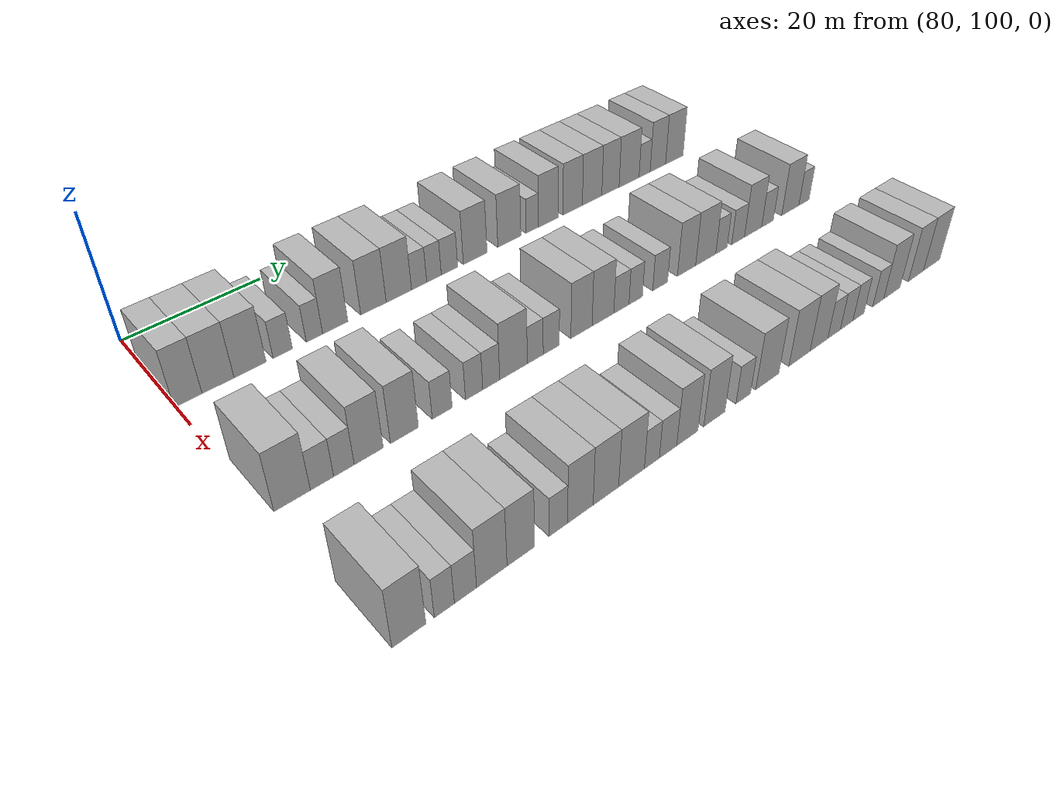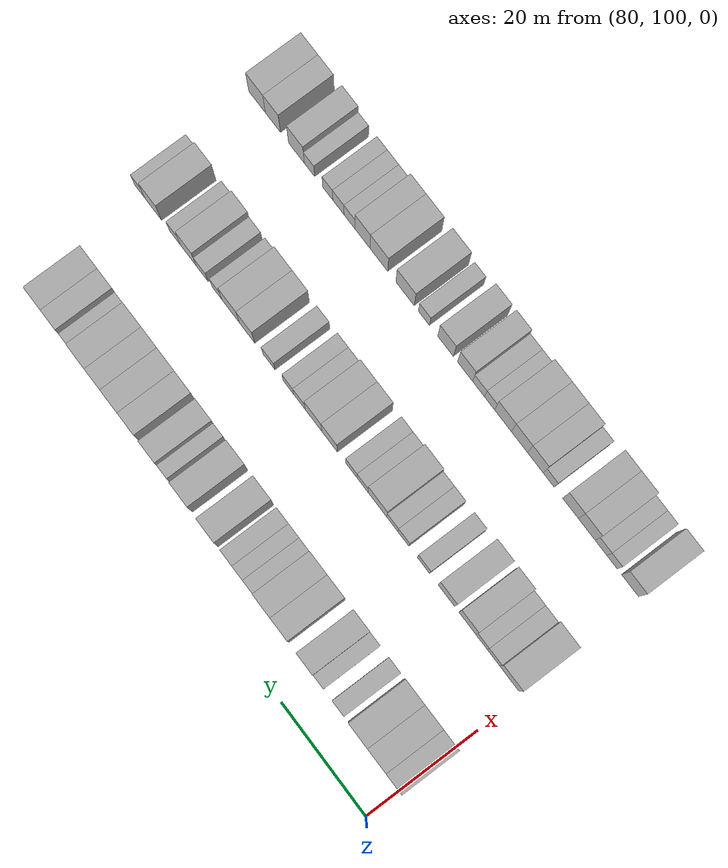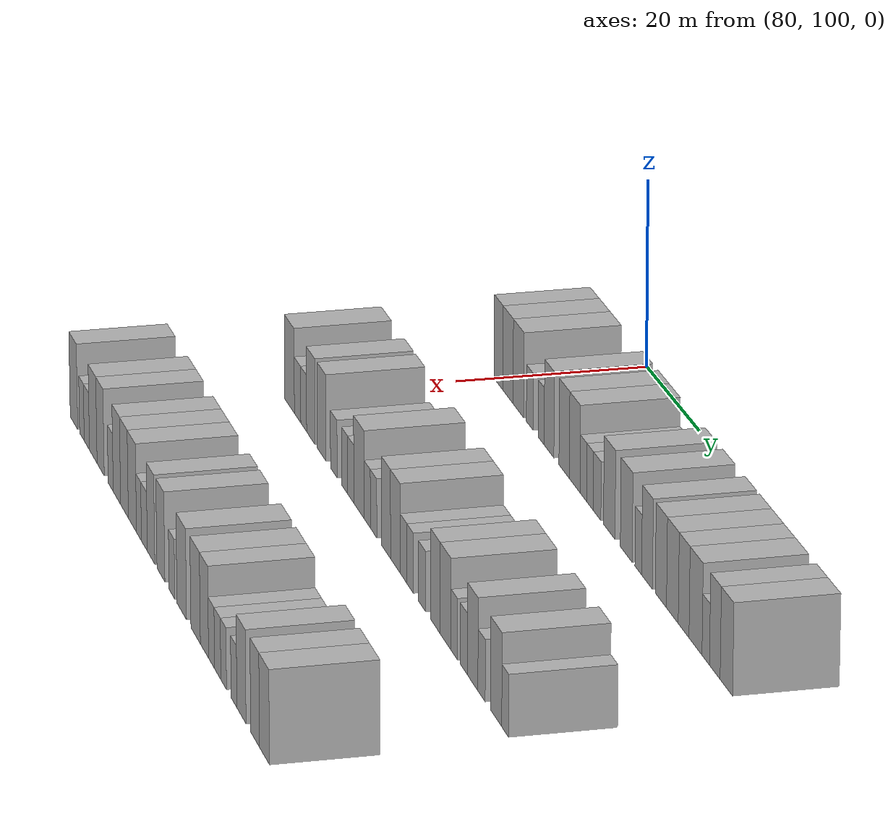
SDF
<sdf version="1.6">
 <world name="default">
  <model name="building_679">
   <static>1</static>
   <pose>91.0000 101.6212 0 0.000000 0.000000 0.000000</pose>
   <link name="link">
    <pose>0 0 4.50 0 0 0</pose>
    <collision name="collision"><geometry><box><size>10.0000 3.6153 9.0000</size></box></geometry></collision>
    <visual name="visual">
     <cast_shadows>0</cast_shadows>
     <geometry><box><size>10.0000 3.6153 9.0000</size></box></geometry>
     <material>
      <script>
       <uri>model://HANNAS_wall/materials/scripts</uri>
       <uri>model://HANNAS_wall/materials/textures</uri>
       <name>vrc/HANNAS_wall</name>
      </script>
     </material>
    </visual>
   </link>
  </model>
  <model name="building_680">
   <static>1</static>
   <pose>91.0000 105.5545 0 0.000000 0.000000 0.000000</pose>
   <link name="link">
    <pose>0 0 4.50 0 0 0</pose>
    <collision name="collision"><geometry><box><size>10.0000 4.2513 9.0000</size></box></geometry></collision>
    <visual name="visual">
     <cast_shadows>0</cast_shadows>
     <geometry><box><size>10.0000 4.2513 9.0000</size></box></geometry>
     <material>
      <script>
       <uri>model://HANNAS_wall/materials/scripts</uri>
       <uri>model://HANNAS_wall/materials/textures</uri>
       <name>vrc/HANNAS_wall</name>
      </script>
     </material>
    </visual>
   </link>
  </model>
  <model name="building_681">
   <static>1</static>
   <pose>91.0000 109.8918 0 0.000000 0.000000 0.000000</pose>
   <link name="link">
    <pose>0 0 4.50 0 0 0</pose>
    <collision name="collision"><geometry><box><size>10.0000 4.4233 9.0000</size></box></geometry></collision>
    <visual name="visual">
     <cast_shadows>0</cast_shadows>
     <geometry><box><size>10.0000 4.4233 9.0000</size></box></geometry>
     <material>
      <script>
       <uri>model://HANNAS_wall/materials/scripts</uri>
       <uri>model://HANNAS_wall/materials/textures</uri>
       <name>vrc/HANNAS_wall</name>
      </script>
     </material>
    </visual>
   </link>
  </model>
  <model name="building_682">
   <static>1</static>
   <pose>91.0000 114.4873 0 0.000000 0.000000 0.000000</pose>
   <link name="link">
    <pose>0 0 3.00 0 0 0</pose>
    <collision name="collision"><geometry><box><size>10.0000 2.7677 6.0000</size></box></geometry></collision>
    <visual name="visual">
     <cast_shadows>0</cast_shadows>
     <geometry><box><size>10.0000 2.7677 6.0000</size></box></geometry>
     <material>
      <script>
       <uri>model://HANNAS_wall/materials/scripts</uri>
       <uri>model://HANNAS_wall/materials/textures</uri>
       <name>vrc/HANNAS_wall</name>
      </script>
     </material>
    </visual>
   </link>
  </model>
  <model name="building_683">
   <static>1</static>
   <pose>91.0000 119.0884 0 0.000000 0.000000 0.000000</pose>
   <link name="link">
    <pose>0 0 3.00 0 0 0</pose>
    <collision name="collision"><geometry><box><size>10.0000 2.4344 6.0000</size></box></geometry></collision>
    <visual name="visual">
     <cast_shadows>0</cast_shadows>
     <geometry><box><size>10.0000 2.4344 6.0000</size></box></geometry>
     <material>
      <script>
       <uri>model://HANNAS_wall/materials/scripts</uri>
       <uri>model://HANNAS_wall/materials/textures</uri>
       <name>vrc/HANNAS_wall</name>
      </script>
     </material>
    </visual>
   </link>
  </model>
  <model name="building_684">
   <static>1</static>
   <pose>91.0000 122.2294 0 0.000000 0.000000 0.000000</pose>
   <link name="link">
    <pose>0 0 4.50 0 0 0</pose>
    <collision name="collision"><geometry><box><size>10.0000 3.8476 9.0000</size></box></geometry></collision>
    <visual name="visual">
     <cast_shadows>0</cast_shadows>
     <geometry><box><size>10.0000 3.8476 9.0000</size></box></geometry>
     <material>
      <script>
       <uri>model://HANNAS_wall/materials/scripts</uri>
       <uri>model://HANNAS_wall/materials/textures</uri>
       <name>vrc/HANNAS_wall</name>
      </script>
     </material>
    </visual>
   </link>
  </model>
  <model name="building_685">
   <static>1</static>
   <pose>91.0000 128.1828 0 0.000000 0.000000 0.000000</pose>
   <link name="link">
    <pose>0 0 4.50 0 0 0</pose>
    <collision name="collision"><geometry><box><size>10.0000 4.0592 9.0000</size></box></geometry></collision>
    <visual name="visual">
     <cast_shadows>0</cast_shadows>
     <geometry><box><size>10.0000 4.0592 9.0000</size></box></geometry>
     <material>
      <script>
       <uri>model://HANNAS_wall/materials/scripts</uri>
       <uri>model://HANNAS_wall/materials/textures</uri>
       <name>vrc/HANNAS_wall</name>
      </script>
     </material>
    </visual>
   </link>
  </model>
  <model name="building_686">
   <static>1</static>
   <pose>91.0000 132.2945 0 0.000000 0.000000 0.000000</pose>
   <link name="link">
    <pose>0 0 4.50 0 0 0</pose>
    <collision name="collision"><geometry><box><size>10.0000 4.1643 9.0000</size></box></geometry></collision>
    <visual name="visual">
     <cast_shadows>0</cast_shadows>
     <geometry><box><size>10.0000 4.1643 9.0000</size></box></geometry>
     <material>
      <script>
       <uri>model://HANNAS_wall/materials/scripts</uri>
       <uri>model://HANNAS_wall/materials/textures</uri>
       <name>vrc/HANNAS_wall</name>
      </script>
     </material>
    </visual>
   </link>
  </model>
  <model name="building_687">
   <static>1</static>
   <pose>91.0000 135.6548 0 0.000000 0.000000 0.000000</pose>
   <link name="link">
    <pose>0 0 3.00 0 0 0</pose>
    <collision name="collision"><geometry><box><size>10.0000 2.5563 6.0000</size></box></geometry></collision>
    <visual name="visual">
     <cast_shadows>0</cast_shadows>
     <geometry><box><size>10.0000 2.5563 6.0000</size></box></geometry>
     <material>
      <script>
       <uri>model://HANNAS_wall/materials/scripts</uri>
       <uri>model://HANNAS_wall/materials/textures</uri>
       <name>vrc/HANNAS_wall</name>
      </script>
     </material>
    </visual>
   </link>
  </model>
  <model name="building_688">
   <static>1</static>
   <pose>91.0000 138.1840 0 0.000000 0.000000 0.000000</pose>
   <link name="link">
    <pose>0 0 3.00 0 0 0</pose>
    <collision name="collision"><geometry><box><size>10.0000 2.5020 6.0000</size></box></geometry></collision>
    <visual name="visual">
     <cast_shadows>0</cast_shadows>
     <geometry><box><size>10.0000 2.5020 6.0000</size></box></geometry>
     <material>
      <script>
       <uri>model://HANNAS_wall/materials/scripts</uri>
       <uri>model://HANNAS_wall/materials/textures</uri>
       <name>vrc/HANNAS_wall</name>
      </script>
     </material>
    </visual>
   </link>
  </model>
  <model name="building_689">
   <static>1</static>
   <pose>91.0000 140.8739 0 0.000000 0.000000 0.000000</pose>
   <link name="link">
    <pose>0 0 3.00 0 0 0</pose>
    <collision name="collision"><geometry><box><size>10.0000 2.8779 6.0000</size></box></geometry></collision>
    <visual name="visual">
     <cast_shadows>0</cast_shadows>
     <geometry><box><size>10.0000 2.8779 6.0000</size></box></geometry>
     <material>
      <script>
       <uri>model://HANNAS_wall/materials/scripts</uri>
       <uri>model://HANNAS_wall/materials/textures</uri>
       <name>vrc/HANNAS_wall</name>
      </script>
     </material>
    </visual>
   </link>
  </model>
  <model name="building_690">
   <static>1</static>
   <pose>91.0000 145.4572 0 0.000000 0.000000 0.000000</pose>
   <link name="link">
    <pose>0 0 4.50 0 0 0</pose>
    <collision name="collision"><geometry><box><size>10.0000 4.2887 9.0000</size></box></geometry></collision>
    <visual name="visual">
     <cast_shadows>0</cast_shadows>
     <geometry><box><size>10.0000 4.2887 9.0000</size></box></geometry>
     <material>
      <script>
       <uri>model://HANNAS_wall/materials/scripts</uri>
       <uri>model://HANNAS_wall/materials/textures</uri>
       <name>vrc/HANNAS_wall</name>
      </script>
     </material>
    </visual>
   </link>
  </model>
  <model name="building_691">
   <static>1</static>
   <pose>91.0000 151.7797 0 0.000000 0.000000 0.000000</pose>
   <link name="link">
    <pose>0 0 4.50 0 0 0</pose>
    <collision name="collision"><geometry><box><size>10.0000 4.3563 9.0000</size></box></geometry></collision>
    <visual name="visual">
     <cast_shadows>0</cast_shadows>
     <geometry><box><size>10.0000 4.3563 9.0000</size></box></geometry>
     <material>
      <script>
       <uri>model://HANNAS_wall/materials/scripts</uri>
       <uri>model://HANNAS_wall/materials/textures</uri>
       <name>vrc/HANNAS_wall</name>
      </script>
     </material>
    </visual>
   </link>
  </model>
  <model name="building_692">
   <static>1</static>
   <pose>91.0000 156.1685 0 0.000000 0.000000 0.000000</pose>
   <link name="link">
    <pose>0 0 3.00 0 0 0</pose>
    <collision name="collision"><geometry><box><size>10.0000 2.4213 6.0000</size></box></geometry></collision>
    <visual name="visual">
     <cast_shadows>0</cast_shadows>
     <geometry><box><size>10.0000 2.4213 6.0000</size></box></geometry>
     <material>
      <script>
       <uri>model://HANNAS_wall/materials/scripts</uri>
       <uri>model://HANNAS_wall/materials/textures</uri>
       <name>vrc/HANNAS_wall</name>
      </script>
     </material>
    </visual>
   </link>
  </model>
  <model name="building_693">
   <static>1</static>
   <pose>91.0000 159.3362 0 0.000000 0.000000 0.000000</pose>
   <link name="link">
    <pose>0 0 4.50 0 0 0</pose>
    <collision name="collision"><geometry><box><size>10.0000 3.9141 9.0000</size></box></geometry></collision>
    <visual name="visual">
     <cast_shadows>0</cast_shadows>
     <geometry><box><size>10.0000 3.9141 9.0000</size></box></geometry>
     <material>
      <script>
       <uri>model://HANNAS_wall/materials/scripts</uri>
       <uri>model://HANNAS_wall/materials/textures</uri>
       <name>vrc/HANNAS_wall</name>
      </script>
     </material>
    </visual>
   </link>
  </model>
  <model name="building_694">
   <static>1</static>
   <pose>91.0000 164.2938 0 0.000000 0.000000 0.000000</pose>
   <link name="link">
    <pose>0 0 4.50 0 0 0</pose>
    <collision name="collision"><geometry><box><size>10.0000 4.0011 9.0000</size></box></geometry></collision>
    <visual name="visual">
     <cast_shadows>0</cast_shadows>
     <geometry><box><size>10.0000 4.0011 9.0000</size></box></geometry>
     <material>
      <script>
       <uri>model://HANNAS_wall/materials/scripts</uri>
       <uri>model://HANNAS_wall/materials/textures</uri>
       <name>vrc/HANNAS_wall</name>
      </script>
     </material>
    </visual>
   </link>
  </model>
  <model name="building_695">
   <static>1</static>
   <pose>91.0000 168.3544 0 0.000000 0.000000 0.000000</pose>
   <link name="link">
    <pose>0 0 4.50 0 0 0</pose>
    <collision name="collision"><geometry><box><size>10.0000 4.1201 9.0000</size></box></geometry></collision>
    <visual name="visual">
     <cast_shadows>0</cast_shadows>
     <geometry><box><size>10.0000 4.1201 9.0000</size></box></geometry>
     <material>
      <script>
       <uri>model://HANNAS_wall/materials/scripts</uri>
       <uri>model://HANNAS_wall/materials/textures</uri>
       <name>vrc/HANNAS_wall</name>
      </script>
     </material>
    </visual>
   </link>
  </model>
  <model name="building_696">
   <static>1</static>
   <pose>91.0000 172.2932 0 0.000000 0.000000 0.000000</pose>
   <link name="link">
    <pose>0 0 4.50 0 0 0</pose>
    <collision name="collision"><geometry><box><size>10.0000 3.7576 9.0000</size></box></geometry></collision>
    <visual name="visual">
     <cast_shadows>0</cast_shadows>
     <geometry><box><size>10.0000 3.7576 9.0000</size></box></geometry>
     <material>
      <script>
       <uri>model://HANNAS_wall/materials/scripts</uri>
       <uri>model://HANNAS_wall/materials/textures</uri>
       <name>vrc/HANNAS_wall</name>
      </script>
     </material>
    </visual>
   </link>
  </model>
  <model name="building_697">
   <static>1</static>
   <pose>91.0000 176.4054 0 0.000000 0.000000 0.000000</pose>
   <link name="link">
    <pose>0 0 4.50 0 0 0</pose>
    <collision name="collision"><geometry><box><size>10.0000 4.4668 9.0000</size></box></geometry></collision>
    <visual name="visual">
     <cast_shadows>0</cast_shadows>
     <geometry><box><size>10.0000 4.4668 9.0000</size></box></geometry>
     <material>
      <script>
       <uri>model://HANNAS_wall/materials/scripts</uri>
       <uri>model://HANNAS_wall/materials/textures</uri>
       <name>vrc/HANNAS_wall</name>
      </script>
     </material>
    </visual>
   </link>
  </model>
  <model name="building_698">
   <static>1</static>
   <pose>91.0000 179.9045 0 0.000000 0.000000 0.000000</pose>
   <link name="link">
    <pose>0 0 3.00 0 0 0</pose>
    <collision name="collision"><geometry><box><size>10.0000 2.5314 6.0000</size></box></geometry></collision>
    <visual name="visual">
     <cast_shadows>0</cast_shadows>
     <geometry><box><size>10.0000 2.5314 6.0000</size></box></geometry>
     <material>
      <script>
       <uri>model://HANNAS_wall/materials/scripts</uri>
       <uri>model://HANNAS_wall/materials/textures</uri>
       <name>vrc/HANNAS_wall</name>
      </script>
     </material>
    </visual>
   </link>
  </model>
  <model name="building_699">
   <static>1</static>
   <pose>91.0000 182.9709 0 0.000000 0.000000 0.000000</pose>
   <link name="link">
    <pose>0 0 4.50 0 0 0</pose>
    <collision name="collision"><geometry><box><size>10.0000 3.6015 9.0000</size></box></geometry></collision>
    <visual name="visual">
     <cast_shadows>0</cast_shadows>
     <geometry><box><size>10.0000 3.6015 9.0000</size></box></geometry>
     <material>
      <script>
       <uri>model://HANNAS_wall/materials/scripts</uri>
       <uri>model://HANNAS_wall/materials/textures</uri>
       <name>vrc/HANNAS_wall</name>
      </script>
     </material>
    </visual>
   </link>
  </model>
  <model name="building_700">
   <static>1</static>
   <pose>91.0000 186.8522 0 0.000000 0.000000 0.000000</pose>
   <link name="link">
    <pose>0 0 4.50 0 0 0</pose>
    <collision name="collision"><geometry><box><size>10.0000 4.1610 9.0000</size></box></geometry></collision>
    <visual name="visual">
     <cast_shadows>0</cast_shadows>
     <geometry><box><size>10.0000 4.1610 9.0000</size></box></geometry>
     <material>
      <script>
       <uri>model://HANNAS_wall/materials/scripts</uri>
       <uri>model://HANNAS_wall/materials/textures</uri>
       <name>vrc/HANNAS_wall</name>
      </script>
     </material>
    </visual>
   </link>
  </model>
  <model name="building_860">
   <static>1</static>
   <pose>113.0000 103.1482 0 0.000000 0.000000 0.000000</pose>
   <link name="link">
    <pose>0 0 4.50 0 0 0</pose>
    <collision name="collision"><geometry><box><size>10.0000 4.4963 9.0000</size></box></geometry></collision>
    <visual name="visual">
     <cast_shadows>0</cast_shadows>
     <geometry><box><size>10.0000 4.4963 9.0000</size></box></geometry>
     <material>
      <script>
       <uri>model://HANNAS_wall/materials/scripts</uri>
       <uri>model://HANNAS_wall/materials/textures</uri>
       <name>vrc/HANNAS_wall</name>
      </script>
     </material>
    </visual>
   </link>
  </model>
  <model name="building_861">
   <static>1</static>
   <pose>113.0000 106.8782 0 0.000000 0.000000 0.000000</pose>
   <link name="link">
    <pose>0 0 3.00 0 0 0</pose>
    <collision name="collision"><geometry><box><size>10.0000 2.9636 6.0000</size></box></geometry></collision>
    <visual name="visual">
     <cast_shadows>0</cast_shadows>
     <geometry><box><size>10.0000 2.9636 6.0000</size></box></geometry>
     <material>
      <script>
       <uri>model://HANNAS_wall/materials/scripts</uri>
       <uri>model://HANNAS_wall/materials/textures</uri>
       <name>vrc/HANNAS_wall</name>
      </script>
     </material>
    </visual>
   </link>
  </model>
  <model name="building_862">
   <static>1</static>
   <pose>113.0000 109.6993 0 0.000000 0.000000 0.000000</pose>
   <link name="link">
    <pose>0 0 3.00 0 0 0</pose>
    <collision name="collision"><geometry><box><size>10.0000 2.6786 6.0000</size></box></geometry></collision>
    <visual name="visual">
     <cast_shadows>0</cast_shadows>
     <geometry><box><size>10.0000 2.6786 6.0000</size></box></geometry>
     <material>
      <script>
       <uri>model://HANNAS_wall/materials/scripts</uri>
       <uri>model://HANNAS_wall/materials/textures</uri>
       <name>vrc/HANNAS_wall</name>
      </script>
     </material>
    </visual>
   </link>
  </model>
  <model name="building_863">
   <static>1</static>
   <pose>113.0000 112.9883 0 0.000000 0.000000 0.000000</pose>
   <link name="link">
    <pose>0 0 4.50 0 0 0</pose>
    <collision name="collision"><geometry><box><size>10.0000 3.8994 9.0000</size></box></geometry></collision>
    <visual name="visual">
     <cast_shadows>0</cast_shadows>
     <geometry><box><size>10.0000 3.8994 9.0000</size></box></geometry>
     <material>
      <script>
       <uri>model://HANNAS_wall/materials/scripts</uri>
       <uri>model://HANNAS_wall/materials/textures</uri>
       <name>vrc/HANNAS_wall</name>
      </script>
     </material>
    </visual>
   </link>
  </model>
  <model name="building_864">
   <static>1</static>
   <pose>113.0000 117.8979 0 0.000000 0.000000 0.000000</pose>
   <link name="link">
    <pose>0 0 4.50 0 0 0</pose>
    <collision name="collision"><geometry><box><size>10.0000 3.9199 9.0000</size></box></geometry></collision>
    <visual name="visual">
     <cast_shadows>0</cast_shadows>
     <geometry><box><size>10.0000 3.9199 9.0000</size></box></geometry>
     <material>
      <script>
       <uri>model://HANNAS_wall/materials/scripts</uri>
       <uri>model://HANNAS_wall/materials/textures</uri>
       <name>vrc/HANNAS_wall</name>
      </script>
     </material>
    </visual>
   </link>
  </model>
  <model name="building_865">
   <static>1</static>
   <pose>113.0000 123.3279 0 0.000000 0.000000 0.000000</pose>
   <link name="link">
    <pose>0 0 3.00 0 0 0</pose>
    <collision name="collision"><geometry><box><size>10.0000 2.9401 6.0000</size></box></geometry></collision>
    <visual name="visual">
     <cast_shadows>0</cast_shadows>
     <geometry><box><size>10.0000 2.9401 6.0000</size></box></geometry>
     <material>
      <script>
       <uri>model://HANNAS_wall/materials/scripts</uri>
       <uri>model://HANNAS_wall/materials/textures</uri>
       <name>vrc/HANNAS_wall</name>
      </script>
     </material>
    </visual>
   </link>
  </model>
  <model name="building_866">
   <static>1</static>
   <pose>113.0000 128.1260 0 0.000000 0.000000 0.000000</pose>
   <link name="link">
    <pose>0 0 3.00 0 0 0</pose>
    <collision name="collision"><geometry><box><size>10.0000 2.6561 6.0000</size></box></geometry></collision>
    <visual name="visual">
     <cast_shadows>0</cast_shadows>
     <geometry><box><size>10.0000 2.6561 6.0000</size></box></geometry>
     <material>
      <script>
       <uri>model://HANNAS_wall/materials/scripts</uri>
       <uri>model://HANNAS_wall/materials/textures</uri>
       <name>vrc/HANNAS_wall</name>
      </script>
     </material>
    </visual>
   </link>
  </model>
  <model name="building_867">
   <static>1</static>
   <pose>113.0000 130.7864 0 0.000000 0.000000 0.000000</pose>
   <link name="link">
    <pose>0 0 3.00 0 0 0</pose>
    <collision name="collision"><geometry><box><size>10.0000 2.6648 6.0000</size></box></geometry></collision>
    <visual name="visual">
     <cast_shadows>0</cast_shadows>
     <geometry><box><size>10.0000 2.6648 6.0000</size></box></geometry>
     <material>
      <script>
       <uri>model://HANNAS_wall/materials/scripts</uri>
       <uri>model://HANNAS_wall/materials/textures</uri>
       <name>vrc/HANNAS_wall</name>
      </script>
     </material>
    </visual>
   </link>
  </model>
  <model name="building_868">
   <static>1</static>
   <pose>113.0000 134.3529 0 0.000000 0.000000 0.000000</pose>
   <link name="link">
    <pose>0 0 4.50 0 0 0</pose>
    <collision name="collision"><geometry><box><size>10.0000 4.4680 9.0000</size></box></geometry></collision>
    <visual name="visual">
     <cast_shadows>0</cast_shadows>
     <geometry><box><size>10.0000 4.4680 9.0000</size></box></geometry>
     <material>
      <script>
       <uri>model://HANNAS_wall/materials/scripts</uri>
       <uri>model://HANNAS_wall/materials/textures</uri>
       <name>vrc/HANNAS_wall</name>
      </script>
     </material>
    </visual>
   </link>
  </model>
  <model name="building_869">
   <static>1</static>
   <pose>113.0000 137.9036 0 0.000000 0.000000 0.000000</pose>
   <link name="link">
    <pose>0 0 3.00 0 0 0</pose>
    <collision name="collision"><geometry><box><size>10.0000 2.6336 6.0000</size></box></geometry></collision>
    <visual name="visual">
     <cast_shadows>0</cast_shadows>
     <geometry><box><size>10.0000 2.6336 6.0000</size></box></geometry>
     <material>
      <script>
       <uri>model://HANNAS_wall/materials/scripts</uri>
       <uri>model://HANNAS_wall/materials/textures</uri>
       <name>vrc/HANNAS_wall</name>
      </script>
     </material>
    </visual>
   </link>
  </model>
  <model name="building_870">
   <static>1</static>
   <pose>113.0000 140.5861 0 0.000000 0.000000 0.000000</pose>
   <link name="link">
    <pose>0 0 3.00 0 0 0</pose>
    <collision name="collision"><geometry><box><size>10.0000 2.7313 6.0000</size></box></geometry></collision>
    <visual name="visual">
     <cast_shadows>0</cast_shadows>
     <geometry><box><size>10.0000 2.7313 6.0000</size></box></geometry>
     <material>
      <script>
       <uri>model://HANNAS_wall/materials/scripts</uri>
       <uri>model://HANNAS_wall/materials/textures</uri>
       <name>vrc/HANNAS_wall</name>
      </script>
     </material>
    </visual>
   </link>
  </model>
  <model name="building_871">
   <static>1</static>
   <pose>113.0000 145.8347 0 0.000000 0.000000 0.000000</pose>
   <link name="link">
    <pose>0 0 4.50 0 0 0</pose>
    <collision name="collision"><geometry><box><size>10.0000 3.7659 9.0000</size></box></geometry></collision>
    <visual name="visual">
     <cast_shadows>0</cast_shadows>
     <geometry><box><size>10.0000 3.7659 9.0000</size></box></geometry>
     <material>
      <script>
       <uri>model://HANNAS_wall/materials/scripts</uri>
       <uri>model://HANNAS_wall/materials/textures</uri>
       <name>vrc/HANNAS_wall</name>
      </script>
     </material>
    </visual>
   </link>
  </model>
  <model name="building_872">
   <static>1</static>
   <pose>113.0000 149.7033 0 0.000000 0.000000 0.000000</pose>
   <link name="link">
    <pose>0 0 4.50 0 0 0</pose>
    <collision name="collision"><geometry><box><size>10.0000 3.9713 9.0000</size></box></geometry></collision>
    <visual name="visual">
     <cast_shadows>0</cast_shadows>
     <geometry><box><size>10.0000 3.9713 9.0000</size></box></geometry>
     <material>
      <script>
       <uri>model://HANNAS_wall/materials/scripts</uri>
       <uri>model://HANNAS_wall/materials/textures</uri>
       <name>vrc/HANNAS_wall</name>
      </script>
     </material>
    </visual>
   </link>
  </model>
  <model name="building_873">
   <static>1</static>
   <pose>113.0000 153.1088 0 0.000000 0.000000 0.000000</pose>
   <link name="link">
    <pose>0 0 3.00 0 0 0</pose>
    <collision name="collision"><geometry><box><size>10.0000 2.8398 6.0000</size></box></geometry></collision>
    <visual name="visual">
     <cast_shadows>0</cast_shadows>
     <geometry><box><size>10.0000 2.8398 6.0000</size></box></geometry>
     <material>
      <script>
       <uri>model://HANNAS_wall/materials/scripts</uri>
       <uri>model://HANNAS_wall/materials/textures</uri>
       <name>vrc/HANNAS_wall</name>
      </script>
     </material>
    </visual>
   </link>
  </model>
  <model name="building_874">
   <static>1</static>
   <pose>113.0000 155.8177 0 0.000000 0.000000 0.000000</pose>
   <link name="link">
    <pose>0 0 3.00 0 0 0</pose>
    <collision name="collision"><geometry><box><size>10.0000 2.5779 6.0000</size></box></geometry></collision>
    <visual name="visual">
     <cast_shadows>0</cast_shadows>
     <geometry><box><size>10.0000 2.5779 6.0000</size></box></geometry>
     <material>
      <script>
       <uri>model://HANNAS_wall/materials/scripts</uri>
       <uri>model://HANNAS_wall/materials/textures</uri>
       <name>vrc/HANNAS_wall</name>
      </script>
     </material>
    </visual>
   </link>
  </model>
  <model name="building_875">
   <static>1</static>
   <pose>113.0000 160.5826 0 0.000000 0.000000 0.000000</pose>
   <link name="link">
    <pose>0 0 3.00 0 0 0</pose>
    <collision name="collision"><geometry><box><size>10.0000 2.9520 6.0000</size></box></geometry></collision>
    <visual name="visual">
     <cast_shadows>0</cast_shadows>
     <geometry><box><size>10.0000 2.9520 6.0000</size></box></geometry>
     <material>
      <script>
       <uri>model://HANNAS_wall/materials/scripts</uri>
       <uri>model://HANNAS_wall/materials/textures</uri>
       <name>vrc/HANNAS_wall</name>
      </script>
     </material>
    </visual>
   </link>
  </model>
  <model name="building_876">
   <static>1</static>
   <pose>113.0000 165.9378 0 0.000000 0.000000 0.000000</pose>
   <link name="link">
    <pose>0 0 4.50 0 0 0</pose>
    <collision name="collision"><geometry><box><size>10.0000 3.7582 9.0000</size></box></geometry></collision>
    <visual name="visual">
     <cast_shadows>0</cast_shadows>
     <geometry><box><size>10.0000 3.7582 9.0000</size></box></geometry>
     <material>
      <script>
       <uri>model://HANNAS_wall/materials/scripts</uri>
       <uri>model://HANNAS_wall/materials/textures</uri>
       <name>vrc/HANNAS_wall</name>
      </script>
     </material>
    </visual>
   </link>
  </model>
  <model name="building_877">
   <static>1</static>
   <pose>113.0000 169.9534 0 0.000000 0.000000 0.000000</pose>
   <link name="link">
    <pose>0 0 4.50 0 0 0</pose>
    <collision name="collision"><geometry><box><size>10.0000 4.2731 9.0000</size></box></geometry></collision>
    <visual name="visual">
     <cast_shadows>0</cast_shadows>
     <geometry><box><size>10.0000 4.2731 9.0000</size></box></geometry>
     <material>
      <script>
       <uri>model://HANNAS_wall/materials/scripts</uri>
       <uri>model://HANNAS_wall/materials/textures</uri>
       <name>vrc/HANNAS_wall</name>
      </script>
     </material>
    </visual>
   </link>
  </model>
  <model name="building_878">
   <static>1</static>
   <pose>113.0000 173.3250 0 0.000000 0.000000 0.000000</pose>
   <link name="link">
    <pose>0 0 3.00 0 0 0</pose>
    <collision name="collision"><geometry><box><size>10.0000 2.4700 6.0000</size></box></geometry></collision>
    <visual name="visual">
     <cast_shadows>0</cast_shadows>
     <geometry><box><size>10.0000 2.4700 6.0000</size></box></geometry>
     <material>
      <script>
       <uri>model://HANNAS_wall/materials/scripts</uri>
       <uri>model://HANNAS_wall/materials/textures</uri>
       <name>vrc/HANNAS_wall</name>
      </script>
     </material>
    </visual>
   </link>
  </model>
  <model name="building_879">
   <static>1</static>
   <pose>113.0000 176.9972 0 0.000000 0.000000 0.000000</pose>
   <link name="link">
    <pose>0 0 3.00 0 0 0</pose>
    <collision name="collision"><geometry><box><size>10.0000 2.8744 6.0000</size></box></geometry></collision>
    <visual name="visual">
     <cast_shadows>0</cast_shadows>
     <geometry><box><size>10.0000 2.8744 6.0000</size></box></geometry>
     <material>
      <script>
       <uri>model://HANNAS_wall/materials/scripts</uri>
       <uri>model://HANNAS_wall/materials/textures</uri>
       <name>vrc/HANNAS_wall</name>
      </script>
     </material>
    </visual>
   </link>
  </model>
  <model name="building_880">
   <static>1</static>
   <pose>113.0000 180.3975 0 0.000000 0.000000 0.000000</pose>
   <link name="link">
    <pose>0 0 4.50 0 0 0</pose>
    <collision name="collision"><geometry><box><size>10.0000 3.9262 9.0000</size></box></geometry></collision>
    <visual name="visual">
     <cast_shadows>0</cast_shadows>
     <geometry><box><size>10.0000 3.9262 9.0000</size></box></geometry>
     <material>
      <script>
       <uri>model://HANNAS_wall/materials/scripts</uri>
       <uri>model://HANNAS_wall/materials/textures</uri>
       <name>vrc/HANNAS_wall</name>
      </script>
     </material>
    </visual>
   </link>
  </model>
  <model name="building_881">
   <static>1</static>
   <pose>113.0000 183.7298 0 0.000000 0.000000 0.000000</pose>
   <link name="link">
    <pose>0 0 3.00 0 0 0</pose>
    <collision name="collision"><geometry><box><size>10.0000 2.7385 6.0000</size></box></geometry></collision>
    <visual name="visual">
     <cast_shadows>0</cast_shadows>
     <geometry><box><size>10.0000 2.7385 6.0000</size></box></geometry>
     <material>
      <script>
       <uri>model://HANNAS_wall/materials/scripts</uri>
       <uri>model://HANNAS_wall/materials/textures</uri>
       <name>vrc/HANNAS_wall</name>
      </script>
     </material>
    </visual>
   </link>
  </model>
  <model name="building_882">
   <static>1</static>
   <pose>113.0000 189.1784 0 0.000000 0.000000 0.000000</pose>
   <link name="link">
    <pose>0 0 4.50 0 0 0</pose>
    <collision name="collision"><geometry><box><size>10.0000 4.1587 9.0000</size></box></geometry></collision>
    <visual name="visual">
     <cast_shadows>0</cast_shadows>
     <geometry><box><size>10.0000 4.1587 9.0000</size></box></geometry>
     <material>
      <script>
       <uri>model://HANNAS_wall/materials/scripts</uri>
       <uri>model://HANNAS_wall/materials/textures</uri>
       <name>vrc/HANNAS_wall</name>
      </script>
     </material>
    </visual>
   </link>
  </model>
  <model name="building_883">
   <static>1</static>
   <pose>113.0000 192.5185 0 0.000000 0.000000 0.000000</pose>
   <link name="link">
    <pose>0 0 3.00 0 0 0</pose>
    <collision name="collision"><geometry><box><size>10.0000 2.5215 6.0000</size></box></geometry></collision>
    <visual name="visual">
     <cast_shadows>0</cast_shadows>
     <geometry><box><size>10.0000 2.5215 6.0000</size></box></geometry>
     <material>
      <script>
       <uri>model://HANNAS_wall/materials/scripts</uri>
       <uri>model://HANNAS_wall/materials/textures</uri>
       <name>vrc/HANNAS_wall</name>
      </script>
     </material>
    </visual>
   </link>
  </model>
  <model name="building_1061">
   <static>1</static>
   <pose>135.0000 103.1004 0 0.000000 0.000000 0.000000</pose>
   <link name="link">
    <pose>0 0 4.50 0 0 0</pose>
    <collision name="collision"><geometry><box><size>10.0000 3.9620 9.0000</size></box></geometry></collision>
    <visual name="visual">
     <cast_shadows>0</cast_shadows>
     <geometry><box><size>10.0000 3.9620 9.0000</size></box></geometry>
     <material>
      <script>
       <uri>model://HANNAS_wall/materials/scripts</uri>
       <uri>model://HANNAS_wall/materials/textures</uri>
       <name>vrc/HANNAS_wall</name>
      </script>
     </material>
    </visual>
   </link>
  </model>
  <model name="building_1062">
   <static>1</static>
   <pose>135.0000 107.3037 0 0.000000 0.000000 0.000000</pose>
   <link name="link">
    <pose>0 0 3.00 0 0 0</pose>
    <collision name="collision"><geometry><box><size>10.0000 2.4447 6.0000</size></box></geometry></collision>
    <visual name="visual">
     <cast_shadows>0</cast_shadows>
     <geometry><box><size>10.0000 2.4447 6.0000</size></box></geometry>
     <material>
      <script>
       <uri>model://HANNAS_wall/materials/scripts</uri>
       <uri>model://HANNAS_wall/materials/textures</uri>
       <name>vrc/HANNAS_wall</name>
      </script>
     </material>
    </visual>
   </link>
  </model>
  <model name="building_1063">
   <static>1</static>
   <pose>135.0000 109.9059 0 0.000000 0.000000 0.000000</pose>
   <link name="link">
    <pose>0 0 3.00 0 0 0</pose>
    <collision name="collision"><geometry><box><size>10.0000 2.7597 6.0000</size></box></geometry></collision>
    <visual name="visual">
     <cast_shadows>0</cast_shadows>
     <geometry><box><size>10.0000 2.7597 6.0000</size></box></geometry>
     <material>
      <script>
       <uri>model://HANNAS_wall/materials/scripts</uri>
       <uri>model://HANNAS_wall/materials/textures</uri>
       <name>vrc/HANNAS_wall</name>
      </script>
     </material>
    </visual>
   </link>
  </model>
  <model name="building_1064">
   <static>1</static>
   <pose>135.0000 113.2553 0 0.000000 0.000000 0.000000</pose>
   <link name="link">
    <pose>0 0 4.50 0 0 0</pose>
    <collision name="collision"><geometry><box><size>10.0000 3.9391 9.0000</size></box></geometry></collision>
    <visual name="visual">
     <cast_shadows>0</cast_shadows>
     <geometry><box><size>10.0000 3.9391 9.0000</size></box></geometry>
     <material>
      <script>
       <uri>model://HANNAS_wall/materials/scripts</uri>
       <uri>model://HANNAS_wall/materials/textures</uri>
       <name>vrc/HANNAS_wall</name>
      </script>
     </material>
    </visual>
   </link>
  </model>
  <model name="building_1065">
   <static>1</static>
   <pose>135.0000 117.0712 0 0.000000 0.000000 0.000000</pose>
   <link name="link">
    <pose>0 0 4.50 0 0 0</pose>
    <collision name="collision"><geometry><box><size>10.0000 3.6927 9.0000</size></box></geometry></collision>
    <visual name="visual">
     <cast_shadows>0</cast_shadows>
     <geometry><box><size>10.0000 3.6927 9.0000</size></box></geometry>
     <material>
      <script>
       <uri>model://HANNAS_wall/materials/scripts</uri>
       <uri>model://HANNAS_wall/materials/textures</uri>
       <name>vrc/HANNAS_wall</name>
      </script>
     </material>
    </visual>
   </link>
  </model>
  <model name="building_1066">
   <static>1</static>
   <pose>135.0000 122.2132 0 0.000000 0.000000 0.000000</pose>
   <link name="link">
    <pose>0 0 3.00 0 0 0</pose>
    <collision name="collision"><geometry><box><size>10.0000 2.5913 6.0000</size></box></geometry></collision>
    <visual name="visual">
     <cast_shadows>0</cast_shadows>
     <geometry><box><size>10.0000 2.5913 6.0000</size></box></geometry>
     <material>
      <script>
       <uri>model://HANNAS_wall/materials/scripts</uri>
       <uri>model://HANNAS_wall/materials/textures</uri>
       <name>vrc/HANNAS_wall</name>
      </script>
     </material>
    </visual>
   </link>
  </model>
  <model name="building_1067">
   <static>1</static>
   <pose>135.0000 125.3776 0 0.000000 0.000000 0.000000</pose>
   <link name="link">
    <pose>0 0 4.50 0 0 0</pose>
    <collision name="collision"><geometry><box><size>10.0000 3.7375 9.0000</size></box></geometry></collision>
    <visual name="visual">
     <cast_shadows>0</cast_shadows>
     <geometry><box><size>10.0000 3.7375 9.0000</size></box></geometry>
     <material>
      <script>
       <uri>model://HANNAS_wall/materials/scripts</uri>
       <uri>model://HANNAS_wall/materials/textures</uri>
       <name>vrc/HANNAS_wall</name>
      </script>
     </material>
    </visual>
   </link>
  </model>
  <model name="building_1068">
   <static>1</static>
   <pose>135.0000 129.1662 0 0.000000 0.000000 0.000000</pose>
   <link name="link">
    <pose>0 0 4.50 0 0 0</pose>
    <collision name="collision"><geometry><box><size>10.0000 3.8397 9.0000</size></box></geometry></collision>
    <visual name="visual">
     <cast_shadows>0</cast_shadows>
     <geometry><box><size>10.0000 3.8397 9.0000</size></box></geometry>
     <material>
      <script>
       <uri>model://HANNAS_wall/materials/scripts</uri>
       <uri>model://HANNAS_wall/materials/textures</uri>
       <name>vrc/HANNAS_wall</name>
      </script>
     </material>
    </visual>
   </link>
  </model>
  <model name="building_1069">
   <static>1</static>
   <pose>135.0000 133.0958 0 0.000000 0.000000 0.000000</pose>
   <link name="link">
    <pose>0 0 4.50 0 0 0</pose>
    <collision name="collision"><geometry><box><size>10.0000 4.0196 9.0000</size></box></geometry></collision>
    <visual name="visual">
     <cast_shadows>0</cast_shadows>
     <geometry><box><size>10.0000 4.0196 9.0000</size></box></geometry>
     <material>
      <script>
       <uri>model://HANNAS_wall/materials/scripts</uri>
       <uri>model://HANNAS_wall/materials/textures</uri>
       <name>vrc/HANNAS_wall</name>
      </script>
     </material>
    </visual>
   </link>
  </model>
  <model name="building_1070">
   <static>1</static>
   <pose>135.0000 136.3153 0 0.000000 0.000000 0.000000</pose>
   <link name="link">
    <pose>0 0 3.00 0 0 0</pose>
    <collision name="collision"><geometry><box><size>10.0000 2.4194 6.0000</size></box></geometry></collision>
    <visual name="visual">
     <cast_shadows>0</cast_shadows>
     <geometry><box><size>10.0000 2.4194 6.0000</size></box></geometry>
     <material>
      <script>
       <uri>model://HANNAS_wall/materials/scripts</uri>
       <uri>model://HANNAS_wall/materials/textures</uri>
       <name>vrc/HANNAS_wall</name>
      </script>
     </material>
    </visual>
   </link>
  </model>
  <model name="building_1071">
   <static>1</static>
   <pose>135.0000 138.9540 0 0.000000 0.000000 0.000000</pose>
   <link name="link">
    <pose>0 0 3.00 0 0 0</pose>
    <collision name="collision"><geometry><box><size>10.0000 2.8580 6.0000</size></box></geometry></collision>
    <visual name="visual">
     <cast_shadows>0</cast_shadows>
     <geometry><box><size>10.0000 2.8580 6.0000</size></box></geometry>
     <material>
      <script>
       <uri>model://HANNAS_wall/materials/scripts</uri>
       <uri>model://HANNAS_wall/materials/textures</uri>
       <name>vrc/HANNAS_wall</name>
      </script>
     </material>
    </visual>
   </link>
  </model>
  <model name="building_1072">
   <static>1</static>
   <pose>135.0000 142.1906 0 0.000000 0.000000 0.000000</pose>
   <link name="link">
    <pose>0 0 4.50 0 0 0</pose>
    <collision name="collision"><geometry><box><size>10.0000 3.6151 9.0000</size></box></geometry></collision>
    <visual name="visual">
     <cast_shadows>0</cast_shadows>
     <geometry><box><size>10.0000 3.6151 9.0000</size></box></geometry>
     <material>
      <script>
       <uri>model://HANNAS_wall/materials/scripts</uri>
       <uri>model://HANNAS_wall/materials/textures</uri>
       <name>vrc/HANNAS_wall</name>
      </script>
     </material>
    </visual>
   </link>
  </model>
  <model name="building_1073">
   <static>1</static>
   <pose>135.0000 146.8842 0 0.000000 0.000000 0.000000</pose>
   <link name="link">
    <pose>0 0 4.50 0 0 0</pose>
    <collision name="collision"><geometry><box><size>10.0000 3.7722 9.0000</size></box></geometry></collision>
    <visual name="visual">
     <cast_shadows>0</cast_shadows>
     <geometry><box><size>10.0000 3.7722 9.0000</size></box></geometry>
     <material>
      <script>
       <uri>model://HANNAS_wall/materials/scripts</uri>
       <uri>model://HANNAS_wall/materials/textures</uri>
       <name>vrc/HANNAS_wall</name>
      </script>
     </material>
    </visual>
   </link>
  </model>
  <model name="building_1074">
   <static>1</static>
   <pose>135.0000 152.1078 0 0.000000 0.000000 0.000000</pose>
   <link name="link">
    <pose>0 0 3.00 0 0 0</pose>
    <collision name="collision"><geometry><box><size>10.0000 2.6750 6.0000</size></box></geometry></collision>
    <visual name="visual">
     <cast_shadows>0</cast_shadows>
     <geometry><box><size>10.0000 2.6750 6.0000</size></box></geometry>
     <material>
      <script>
       <uri>model://HANNAS_wall/materials/scripts</uri>
       <uri>model://HANNAS_wall/materials/textures</uri>
       <name>vrc/HANNAS_wall</name>
      </script>
     </material>
    </visual>
   </link>
  </model>
  <model name="building_1075">
   <static>1</static>
   <pose>135.0000 156.6628 0 0.000000 0.000000 0.000000</pose>
   <link name="link">
    <pose>0 0 4.50 0 0 0</pose>
    <collision name="collision"><geometry><box><size>10.0000 4.4350 9.0000</size></box></geometry></collision>
    <visual name="visual">
     <cast_shadows>0</cast_shadows>
     <geometry><box><size>10.0000 4.4350 9.0000</size></box></geometry>
     <material>
      <script>
       <uri>model://HANNAS_wall/materials/scripts</uri>
       <uri>model://HANNAS_wall/materials/textures</uri>
       <name>vrc/HANNAS_wall</name>
      </script>
     </material>
    </visual>
   </link>
  </model>
  <model name="building_1076">
   <static>1</static>
   <pose>135.0000 163.0288 0 0.000000 0.000000 0.000000</pose>
   <link name="link">
    <pose>0 0 4.50 0 0 0</pose>
    <collision name="collision"><geometry><box><size>10.0000 4.2970 9.0000</size></box></geometry></collision>
    <visual name="visual">
     <cast_shadows>0</cast_shadows>
     <geometry><box><size>10.0000 4.2970 9.0000</size></box></geometry>
     <material>
      <script>
       <uri>model://HANNAS_wall/materials/scripts</uri>
       <uri>model://HANNAS_wall/materials/textures</uri>
       <name>vrc/HANNAS_wall</name>
      </script>
     </material>
    </visual>
   </link>
  </model>
  <model name="building_1077">
   <static>1</static>
   <pose>135.0000 167.0216 0 0.000000 0.000000 0.000000</pose>
   <link name="link">
    <pose>0 0 4.50 0 0 0</pose>
    <collision name="collision"><geometry><box><size>10.0000 3.6887 9.0000</size></box></geometry></collision>
    <visual name="visual">
     <cast_shadows>0</cast_shadows>
     <geometry><box><size>10.0000 3.6887 9.0000</size></box></geometry>
     <material>
      <script>
       <uri>model://HANNAS_wall/materials/scripts</uri>
       <uri>model://HANNAS_wall/materials/textures</uri>
       <name>vrc/HANNAS_wall</name>
      </script>
     </material>
    </visual>
   </link>
  </model>
  <model name="building_1078">
   <static>1</static>
   <pose>135.0000 170.2111 0 0.000000 0.000000 0.000000</pose>
   <link name="link">
    <pose>0 0 3.00 0 0 0</pose>
    <collision name="collision"><geometry><box><size>10.0000 2.6903 6.0000</size></box></geometry></collision>
    <visual name="visual">
     <cast_shadows>0</cast_shadows>
     <geometry><box><size>10.0000 2.6903 6.0000</size></box></geometry>
     <material>
      <script>
       <uri>model://HANNAS_wall/materials/scripts</uri>
       <uri>model://HANNAS_wall/materials/textures</uri>
       <name>vrc/HANNAS_wall</name>
      </script>
     </material>
    </visual>
   </link>
  </model>
  <model name="building_1079">
   <static>1</static>
   <pose>135.0000 172.9373 0 0.000000 0.000000 0.000000</pose>
   <link name="link">
    <pose>0 0 3.00 0 0 0</pose>
    <collision name="collision"><geometry><box><size>10.0000 2.7620 6.0000</size></box></geometry></collision>
    <visual name="visual">
     <cast_shadows>0</cast_shadows>
     <geometry><box><size>10.0000 2.7620 6.0000</size></box></geometry>
     <material>
      <script>
       <uri>model://HANNAS_wall/materials/scripts</uri>
       <uri>model://HANNAS_wall/materials/textures</uri>
       <name>vrc/HANNAS_wall</name>
      </script>
     </material>
    </visual>
   </link>
  </model>
  <model name="building_1080">
   <static>1</static>
   <pose>135.0000 175.5594 0 0.000000 0.000000 0.000000</pose>
   <link name="link">
    <pose>0 0 3.00 0 0 0</pose>
    <collision name="collision"><geometry><box><size>10.0000 2.4821 6.0000</size></box></geometry></collision>
    <visual name="visual">
     <cast_shadows>0</cast_shadows>
     <geometry><box><size>10.0000 2.4821 6.0000</size></box></geometry>
     <material>
      <script>
       <uri>model://HANNAS_wall/materials/scripts</uri>
       <uri>model://HANNAS_wall/materials/textures</uri>
       <name>vrc/HANNAS_wall</name>
      </script>
     </material>
    </visual>
   </link>
  </model>
  <model name="building_1081">
   <static>1</static>
   <pose>135.0000 180.0663 0 0.000000 0.000000 0.000000</pose>
   <link name="link">
    <pose>0 0 3.00 0 0 0</pose>
    <collision name="collision"><geometry><box><size>10.0000 2.5316 6.0000</size></box></geometry></collision>
    <visual name="visual">
     <cast_shadows>0</cast_shadows>
     <geometry><box><size>10.0000 2.5316 6.0000</size></box></geometry>
     <material>
      <script>
       <uri>model://HANNAS_wall/materials/scripts</uri>
       <uri>model://HANNAS_wall/materials/textures</uri>
       <name>vrc/HANNAS_wall</name>
      </script>
     </material>
    </visual>
   </link>
  </model>
  <model name="building_1082">
   <static>1</static>
   <pose>135.0000 183.2820 0 0.000000 0.000000 0.000000</pose>
   <link name="link">
    <pose>0 0 4.50 0 0 0</pose>
    <collision name="collision"><geometry><box><size>10.0000 3.8999 9.0000</size></box></geometry></collision>
    <visual name="visual">
     <cast_shadows>0</cast_shadows>
     <geometry><box><size>10.0000 3.8999 9.0000</size></box></geometry>
     <material>
      <script>
       <uri>model://HANNAS_wall/materials/scripts</uri>
       <uri>model://HANNAS_wall/materials/textures</uri>
       <name>vrc/HANNAS_wall</name>
      </script>
     </material>
    </visual>
   </link>
  </model>
  <model name="building_1083">
   <static>1</static>
   <pose>135.0000 189.0979 0 0.000000 0.000000 0.000000</pose>
   <link name="link">
    <pose>0 0 4.50 0 0 0</pose>
    <collision name="collision"><geometry><box><size>10.0000 3.7319 9.0000</size></box></geometry></collision>
    <visual name="visual">
     <cast_shadows>0</cast_shadows>
     <geometry><box><size>10.0000 3.7319 9.0000</size></box></geometry>
     <material>
      <script>
       <uri>model://HANNAS_wall/materials/scripts</uri>
       <uri>model://HANNAS_wall/materials/textures</uri>
       <name>vrc/HANNAS_wall</name>
      </script>
     </material>
    </visual>
   </link>
  </model>
  <model name="building_1084">
   <static>1</static>
   <pose>135.0000 193.0405 0 0.000000 0.000000 0.000000</pose>
   <link name="link">
    <pose>0 0 4.50 0 0 0</pose>
    <collision name="collision"><geometry><box><size>10.0000 4.1532 9.0000</size></box></geometry></collision>
    <visual name="visual">
     <cast_shadows>0</cast_shadows>
     <geometry><box><size>10.0000 4.1532 9.0000</size></box></geometry>
     <material>
      <script>
       <uri>model://HANNAS_wall/materials/scripts</uri>
       <uri>model://HANNAS_wall/materials/textures</uri>
       <name>vrc/HANNAS_wall</name>
      </script>
     </material>
    </visual>
   </link>
  </model>
 </world>
</sdf>
